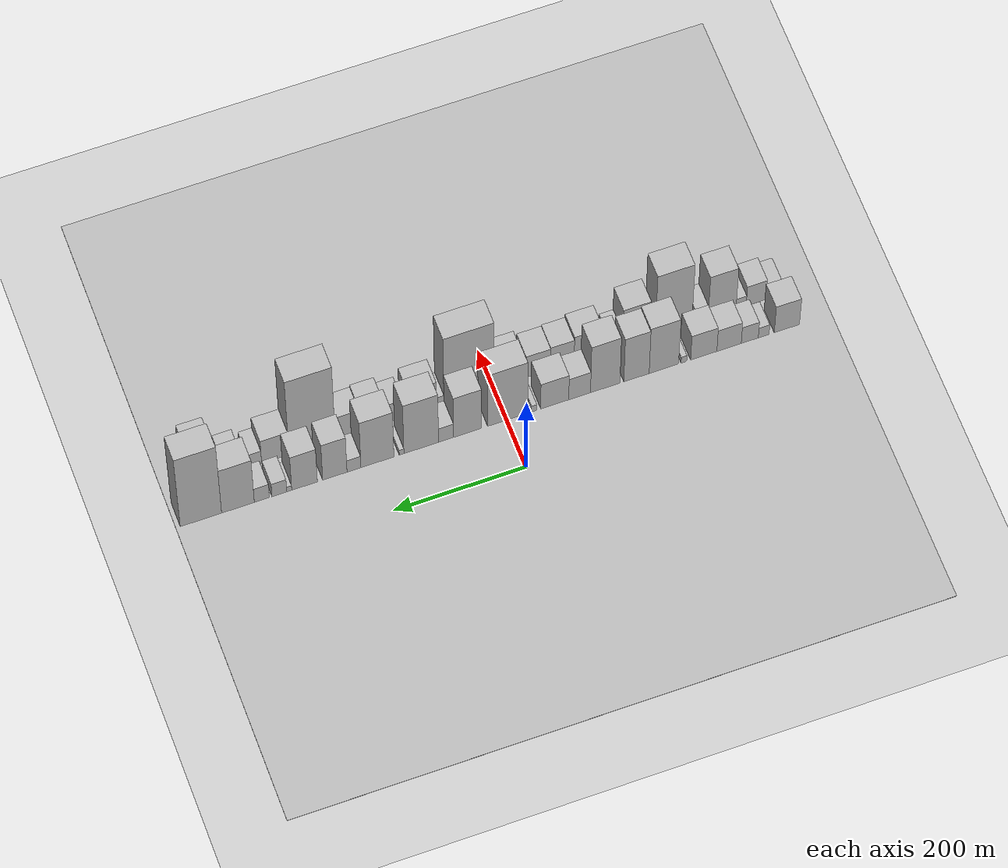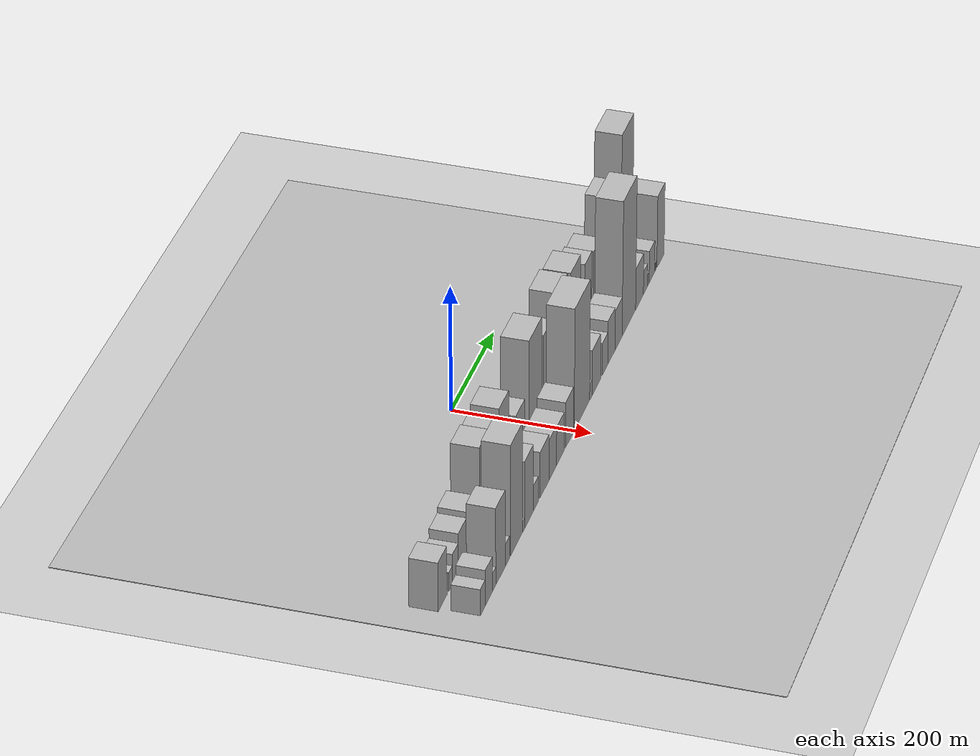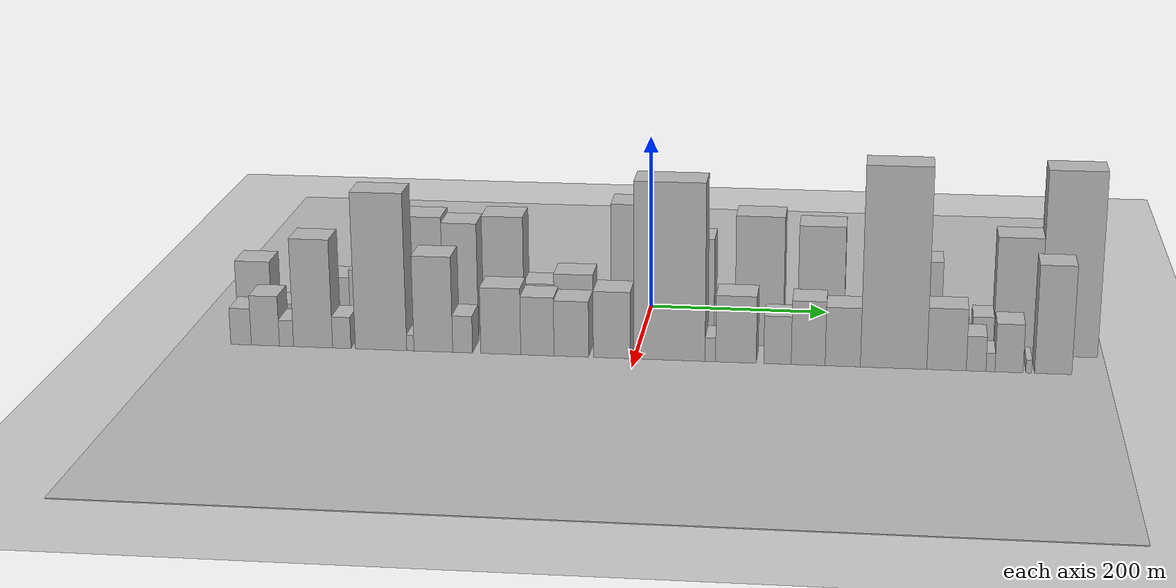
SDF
<sdf version="1.6">
 <world name="default">
  <include><name>ground_plane_1</name><uri>model://HANNAS_ground_plane</uri></include>
  <include>
   <name>ground_plane_2</name>
   <uri>model://HANNAS_ground_plane</uri>
   <pose>100 0 0  0 0 0</pose>
  </include>
  <model name="building_1">
   <static>1</static>
   <pose>100.0000 -430.4904 0 0.000000 0.000000 0.000000</pose>
   <link name="link">
    <pose>0 0 39.00 0 0 0</pose>
    <collision name="collision"><geometry><box><size>40.0000 39.0193 78.0000</size></box></geometry></collision>
    <visual name="visual">
     <cast_shadows>0</cast_shadows>
     <geometry><box><size>40.0000 39.0193 78.0000</size></box></geometry>
     <material>
      <script>
       <uri>model://HANNAS_wall/materials/scripts</uri>
       <uri>model://HANNAS_wall/materials/textures</uri>
       <name>vrc/HANNAS_wall</name>
      </script>
     </material>
    </visual>
   </link>
  </model>
  <model name="building_2">
   <static>1</static>
   <pose>100.0000 -394.6448 0 0.000000 0.000000 0.000000</pose>
   <link name="link">
    <pose>0 0 15.00 0 0 0</pose>
    <collision name="collision"><geometry><box><size>40.0000 16.6718 30.0000</size></box></geometry></collision>
    <visual name="visual">
     <cast_shadows>0</cast_shadows>
     <geometry><box><size>40.0000 16.6718 30.0000</size></box></geometry>
     <material>
      <script>
       <uri>model://HANNAS_wall/materials/scripts</uri>
       <uri>model://HANNAS_wall/materials/textures</uri>
       <name>vrc/HANNAS_wall</name>
      </script>
     </material>
    </visual>
   </link>
  </model>
  <model name="building_3">
   <static>1</static>
   <pose>100.0000 -373.1504 0 0.000000 0.000000 0.000000</pose>
   <link name="link">
    <pose>0 0 24.00 0 0 0</pose>
    <collision name="collision"><geometry><box><size>40.0000 26.3172 48.0000</size></box></geometry></collision>
    <visual name="visual">
     <cast_shadows>0</cast_shadows>
     <geometry><box><size>40.0000 26.3172 48.0000</size></box></geometry>
     <material>
      <script>
       <uri>model://HANNAS_wall/materials/scripts</uri>
       <uri>model://HANNAS_wall/materials/textures</uri>
       <name>vrc/HANNAS_wall</name>
      </script>
     </material>
    </visual>
   </link>
  </model>
  <model name="building_4">
   <static>1</static>
   <pose>100.0000 -341.1325 0 0.000000 0.000000 0.000000</pose>
   <link name="link">
    <pose>0 0 31.50 0 0 0</pose>
    <collision name="collision"><geometry><box><size>40.0000 37.7185 63.0000</size></box></geometry></collision>
    <visual name="visual">
     <cast_shadows>0</cast_shadows>
     <geometry><box><size>40.0000 37.7185 63.0000</size></box></geometry>
     <material>
      <script>
       <uri>model://HANNAS_wall/materials/scripts</uri>
       <uri>model://HANNAS_wall/materials/textures</uri>
       <name>vrc/HANNAS_wall</name>
      </script>
     </material>
    </visual>
   </link>
  </model>
  <model name="building_5">
   <static>1</static>
   <pose>100.0000 -302.0661 0 0.000000 0.000000 0.000000</pose>
   <link name="link">
    <pose>0 0 36.00 0 0 0</pose>
    <collision name="collision"><geometry><box><size>40.0000 40.4142 72.0000</size></box></geometry></collision>
    <visual name="visual">
     <cast_shadows>0</cast_shadows>
     <geometry><box><size>40.0000 40.4142 72.0000</size></box></geometry>
     <material>
      <script>
       <uri>model://HANNAS_wall/materials/scripts</uri>
       <uri>model://HANNAS_wall/materials/textures</uri>
       <name>vrc/HANNAS_wall</name>
      </script>
     </material>
    </visual>
   </link>
  </model>
  <model name="building_6">
   <static>1</static>
   <pose>100.0000 -271.5592 0 0.000000 0.000000 0.000000</pose>
   <link name="link">
    <pose>0 0 9.00 0 0 0</pose>
    <collision name="collision"><geometry><box><size>40.0000 8.5996 18.0000</size></box></geometry></collision>
    <visual name="visual">
     <cast_shadows>0</cast_shadows>
     <geometry><box><size>40.0000 8.5996 18.0000</size></box></geometry>
     <material>
      <script>
       <uri>model://HANNAS_wall/materials/scripts</uri>
       <uri>model://HANNAS_wall/materials/textures</uri>
       <name>vrc/HANNAS_wall</name>
      </script>
     </material>
    </visual>
   </link>
  </model>
  <model name="building_7">
   <static>1</static>
   <pose>100.0000 -240.6207 0 0.000000 0.000000 0.000000</pose>
   <link name="link">
    <pose>0 0 67.50 0 0 0</pose>
    <collision name="collision"><geometry><box><size>40.0000 45.2774 135.0000</size></box></geometry></collision>
    <visual name="visual">
     <cast_shadows>0</cast_shadows>
     <geometry><box><size>40.0000 45.2774 135.0000</size></box></geometry>
     <material>
      <script>
       <uri>model://HANNAS_wall/materials/scripts</uri>
       <uri>model://HANNAS_wall/materials/textures</uri>
       <name>vrc/HANNAS_wall</name>
      </script>
     </material>
    </visual>
   </link>
  </model>
  <model name="building_8">
   <static>1</static>
   <pose>100.0000 -198.5505 0 0.000000 0.000000 0.000000</pose>
   <link name="link">
    <pose>0 0 64.50 0 0 0</pose>
    <collision name="collision"><geometry><box><size>40.0000 38.8631 129.0000</size></box></geometry></collision>
    <visual name="visual">
     <cast_shadows>0</cast_shadows>
     <geometry><box><size>40.0000 38.8631 129.0000</size></box></geometry>
     <material>
      <script>
       <uri>model://HANNAS_wall/materials/scripts</uri>
       <uri>model://HANNAS_wall/materials/textures</uri>
       <name>vrc/HANNAS_wall</name>
      </script>
     </material>
    </visual>
   </link>
  </model>
  <model name="building_9">
   <static>1</static>
   <pose>100.0000 -150.5896 0 0.000000 0.000000 0.000000</pose>
   <link name="link">
    <pose>0 0 69.00 0 0 0</pose>
    <collision name="collision"><geometry><box><size>40.0000 45.0587 138.0000</size></box></geometry></collision>
    <visual name="visual">
     <cast_shadows>0</cast_shadows>
     <geometry><box><size>40.0000 45.0587 138.0000</size></box></geometry>
     <material>
      <script>
       <uri>model://HANNAS_wall/materials/scripts</uri>
       <uri>model://HANNAS_wall/materials/textures</uri>
       <name>vrc/HANNAS_wall</name>
      </script>
     </material>
    </visual>
   </link>
  </model>
  <model name="building_10">
   <static>1</static>
   <pose>100.0000 -111.4120 0 0.000000 0.000000 0.000000</pose>
   <link name="link">
    <pose>0 0 31.50 0 0 0</pose>
    <collision name="collision"><geometry><box><size>40.0000 33.2965 63.0000</size></box></geometry></collision>
    <visual name="visual">
     <cast_shadows>0</cast_shadows>
     <geometry><box><size>40.0000 33.2965 63.0000</size></box></geometry>
     <material>
      <script>
       <uri>model://HANNAS_wall/materials/scripts</uri>
       <uri>model://HANNAS_wall/materials/textures</uri>
       <name>vrc/HANNAS_wall</name>
      </script>
     </material>
    </visual>
   </link>
  </model>
  <model name="building_11">
   <static>1</static>
   <pose>100.0000 -73.3298 0 0.000000 0.000000 0.000000</pose>
   <link name="link">
    <pose>0 0 37.50 0 0 0</pose>
    <collision name="collision"><geometry><box><size>40.0000 42.8678 75.0000</size></box></geometry></collision>
    <visual name="visual">
     <cast_shadows>0</cast_shadows>
     <geometry><box><size>40.0000 42.8678 75.0000</size></box></geometry>
     <material>
      <script>
       <uri>model://HANNAS_wall/materials/scripts</uri>
       <uri>model://HANNAS_wall/materials/textures</uri>
       <name>vrc/HANNAS_wall</name>
      </script>
     </material>
    </visual>
   </link>
  </model>
  <model name="building_12">
   <static>1</static>
   <pose>100.0000 -41.9092 0 0.000000 0.000000 0.000000</pose>
   <link name="link">
    <pose>0 0 9.00 0 0 0</pose>
    <collision name="collision"><geometry><box><size>40.0000 7.9735 18.0000</size></box></geometry></collision>
    <visual name="visual">
     <cast_shadows>0</cast_shadows>
     <geometry><box><size>40.0000 7.9735 18.0000</size></box></geometry>
     <material>
      <script>
       <uri>model://HANNAS_wall/materials/scripts</uri>
       <uri>model://HANNAS_wall/materials/textures</uri>
       <name>vrc/HANNAS_wall</name>
      </script>
     </material>
    </visual>
   </link>
  </model>
  <model name="building_13">
   <static>1</static>
   <pose>100.0000 -1.4024 0 0.000000 0.000000 0.000000</pose>
   <link name="link">
    <pose>0 0 78.00 0 0 0</pose>
    <collision name="collision"><geometry><box><size>40.0000 61.0400 156.0000</size></box></geometry></collision>
    <visual name="visual">
     <cast_shadows>0</cast_shadows>
     <geometry><box><size>40.0000 61.0400 156.0000</size></box></geometry>
     <material>
      <script>
       <uri>model://HANNAS_wall/materials/scripts</uri>
       <uri>model://HANNAS_wall/materials/textures</uri>
       <name>vrc/HANNAS_wall</name>
      </script>
     </material>
    </visual>
   </link>
  </model>
  <model name="building_14">
   <static>1</static>
   <pose>100.0000 59.4734 0 0.000000 0.000000 0.000000</pose>
   <link name="link">
    <pose>0 0 60.00 0 0 0</pose>
    <collision name="collision"><geometry><box><size>40.0000 42.7116 120.0000</size></box></geometry></collision>
    <visual name="visual">
     <cast_shadows>0</cast_shadows>
     <geometry><box><size>40.0000 42.7116 120.0000</size></box></geometry>
     <material>
      <script>
       <uri>model://HANNAS_wall/materials/scripts</uri>
       <uri>model://HANNAS_wall/materials/textures</uri>
       <name>vrc/HANNAS_wall</name>
      </script>
     </material>
    </visual>
   </link>
  </model>
  <model name="building_15">
   <static>1</static>
   <pose>100.0000 92.2608 0 0.000000 0.000000 0.000000</pose>
   <link name="link">
    <pose>0 0 21.00 0 0 0</pose>
    <collision name="collision"><geometry><box><size>40.0000 22.8633 42.0000</size></box></geometry></collision>
    <visual name="visual">
     <cast_shadows>0</cast_shadows>
     <geometry><box><size>40.0000 22.8633 42.0000</size></box></geometry>
     <material>
      <script>
       <uri>model://HANNAS_wall/materials/scripts</uri>
       <uri>model://HANNAS_wall/materials/textures</uri>
       <name>vrc/HANNAS_wall</name>
      </script>
     </material>
    </visual>
   </link>
  </model>
  <model name="building_16">
   <static>1</static>
   <pose>100.0000 129.9867 0 0.000000 0.000000 0.000000</pose>
   <link name="link">
    <pose>0 0 73.50 0 0 0</pose>
    <collision name="collision"><geometry><box><size>40.0000 52.5884 147.0000</size></box></geometry></collision>
    <visual name="visual">
     <cast_shadows>0</cast_shadows>
     <geometry><box><size>40.0000 52.5884 147.0000</size></box></geometry>
     <material>
      <script>
       <uri>model://HANNAS_wall/materials/scripts</uri>
       <uri>model://HANNAS_wall/materials/textures</uri>
       <name>vrc/HANNAS_wall</name>
      </script>
     </material>
    </visual>
   </link>
  </model>
  <model name="building_17">
   <static>1</static>
   <pose>100.0000 159.8774 0 0.000000 0.000000 0.000000</pose>
   <link name="link">
    <pose>0 0 7.50 0 0 0</pose>
    <collision name="collision"><geometry><box><size>40.0000 7.1929 15.0000</size></box></geometry></collision>
    <visual name="visual">
     <cast_shadows>0</cast_shadows>
     <geometry><box><size>40.0000 7.1929 15.0000</size></box></geometry>
     <material>
      <script>
       <uri>model://HANNAS_wall/materials/scripts</uri>
       <uri>model://HANNAS_wall/materials/textures</uri>
       <name>vrc/HANNAS_wall</name>
      </script>
     </material>
    </visual>
   </link>
  </model>
  <model name="building_18">
   <static>1</static>
   <pose>100.0000 196.4500 0 0.000000 0.000000 0.000000</pose>
   <link name="link">
    <pose>0 0 69.00 0 0 0</pose>
    <collision name="collision"><geometry><box><size>40.0000 49.9524 138.0000</size></box></geometry></collision>
    <visual name="visual">
     <cast_shadows>0</cast_shadows>
     <geometry><box><size>40.0000 49.9524 138.0000</size></box></geometry>
     <material>
      <script>
       <uri>model://HANNAS_wall/materials/scripts</uri>
       <uri>model://HANNAS_wall/materials/textures</uri>
       <name>vrc/HANNAS_wall</name>
      </script>
     </material>
    </visual>
   </link>
  </model>
  <model name="building_19">
   <static>1</static>
   <pose>100.0000 231.9351 0 0.000000 0.000000 0.000000</pose>
   <link name="link">
    <pose>0 0 18.00 0 0 0</pose>
    <collision name="collision"><geometry><box><size>40.0000 21.0177 36.0000</size></box></geometry></collision>
    <visual name="visual">
     <cast_shadows>0</cast_shadows>
     <geometry><box><size>40.0000 21.0177 36.0000</size></box></geometry>
     <material>
      <script>
       <uri>model://HANNAS_wall/materials/scripts</uri>
       <uri>model://HANNAS_wall/materials/textures</uri>
       <name>vrc/HANNAS_wall</name>
      </script>
     </material>
    </visual>
   </link>
  </model>
  <model name="building_20">
   <static>1</static>
   <pose>100.0000 260.8106 0 0.000000 0.000000 0.000000</pose>
   <link name="link">
    <pose>0 0 54.00 0 0 0</pose>
    <collision name="collision"><geometry><box><size>40.0000 36.7334 108.0000</size></box></geometry></collision>
    <visual name="visual">
     <cast_shadows>0</cast_shadows>
     <geometry><box><size>40.0000 36.7334 108.0000</size></box></geometry>
     <material>
      <script>
       <uri>model://HANNAS_wall/materials/scripts</uri>
       <uri>model://HANNAS_wall/materials/textures</uri>
       <name>vrc/HANNAS_wall</name>
      </script>
     </material>
    </visual>
   </link>
  </model>
  <model name="building_21">
   <static>1</static>
   <pose>100.0000 306.5090 0 0.000000 0.000000 0.000000</pose>
   <link name="link">
    <pose>0 0 51.00 0 0 0</pose>
    <collision name="collision"><geometry><box><size>40.0000 38.6634 102.0000</size></box></geometry></collision>
    <visual name="visual">
     <cast_shadows>0</cast_shadows>
     <geometry><box><size>40.0000 38.6634 102.0000</size></box></geometry>
     <material>
      <script>
       <uri>model://HANNAS_wall/materials/scripts</uri>
       <uri>model://HANNAS_wall/materials/textures</uri>
       <name>vrc/HANNAS_wall</name>
      </script>
     </material>
    </visual>
   </link>
  </model>
  <model name="building_22">
   <static>1</static>
   <pose>100.0000 329.5579 0 0.000000 0.000000 0.000000</pose>
   <link name="link">
    <pose>0 0 7.50 0 0 0</pose>
    <collision name="collision"><geometry><box><size>40.0000 7.4344 15.0000</size></box></geometry></collision>
    <visual name="visual">
     <cast_shadows>0</cast_shadows>
     <geometry><box><size>40.0000 7.4344 15.0000</size></box></geometry>
     <material>
      <script>
       <uri>model://HANNAS_wall/materials/scripts</uri>
       <uri>model://HANNAS_wall/materials/textures</uri>
       <name>vrc/HANNAS_wall</name>
      </script>
     </material>
    </visual>
   </link>
  </model>
  <model name="building_23">
   <static>1</static>
   <pose>100.0000 344.4631 0 0.000000 0.000000 0.000000</pose>
   <link name="link">
    <pose>0 0 19.50 0 0 0</pose>
    <collision name="collision"><geometry><box><size>40.0000 22.3760 39.0000</size></box></geometry></collision>
    <visual name="visual">
     <cast_shadows>0</cast_shadows>
     <geometry><box><size>40.0000 22.3760 39.0000</size></box></geometry>
     <material>
      <script>
       <uri>model://HANNAS_wall/materials/scripts</uri>
       <uri>model://HANNAS_wall/materials/textures</uri>
       <name>vrc/HANNAS_wall</name>
      </script>
     </material>
    </visual>
   </link>
  </model>
  <model name="building_24">
   <static>1</static>
   <pose>100.0000 370.8911 0 0.000000 0.000000 0.000000</pose>
   <link name="link">
    <pose>0 0 21.00 0 0 0</pose>
    <collision name="collision"><geometry><box><size>40.0000 22.4800 42.0000</size></box></geometry></collision>
    <visual name="visual">
     <cast_shadows>0</cast_shadows>
     <geometry><box><size>40.0000 22.4800 42.0000</size></box></geometry>
     <material>
      <script>
       <uri>model://HANNAS_wall/materials/scripts</uri>
       <uri>model://HANNAS_wall/materials/textures</uri>
       <name>vrc/HANNAS_wall</name>
      </script>
     </material>
    </visual>
   </link>
  </model>
  <model name="building_25">
   <static>1</static>
   <pose>100.0000 406.7047 0 0.000000 0.000000 0.000000</pose>
   <link name="link">
    <pose>0 0 66.00 0 0 0</pose>
    <collision name="collision"><geometry><box><size>40.0000 49.1472 132.0000</size></box></geometry></collision>
    <visual name="visual">
     <cast_shadows>0</cast_shadows>
     <geometry><box><size>40.0000 49.1472 132.0000</size></box></geometry>
     <material>
      <script>
       <uri>model://HANNAS_wall/materials/scripts</uri>
       <uri>model://HANNAS_wall/materials/textures</uri>
       <name>vrc/HANNAS_wall</name>
      </script>
     </material>
    </visual>
   </link>
  </model>
  <model name="building_26">
   <static>1</static>
   <pose>100.0000 462.3320 0 0.000000 0.000000 0.000000</pose>
   <link name="link">
    <pose>0 0 103.50 0 0 0</pose>
    <collision name="collision"><geometry><box><size>40.0000 62.1074 207.0000</size></box></geometry></collision>
    <visual name="visual">
     <cast_shadows>0</cast_shadows>
     <geometry><box><size>40.0000 62.1074 207.0000</size></box></geometry>
     <material>
      <script>
       <uri>model://HANNAS_wall/materials/scripts</uri>
       <uri>model://HANNAS_wall/materials/textures</uri>
       <name>vrc/HANNAS_wall</name>
      </script>
     </material>
    </visual>
   </link>
  </model>
  <model name="building_27">
   <static>1</static>
   <pose>155.0000 -431.5969 0 0.000000 0.000000 0.000000</pose>
   <link name="link">
    <pose>0 0 21.00 0 0 0</pose>
    <collision name="collision"><geometry><box><size>40.0000 22.8062 42.0000</size></box></geometry></collision>
    <visual name="visual">
     <cast_shadows>0</cast_shadows>
     <geometry><box><size>40.0000 22.8062 42.0000</size></box></geometry>
     <material>
      <script>
       <uri>model://HANNAS_wall/materials/scripts</uri>
       <uri>model://HANNAS_wall/materials/textures</uri>
       <name>vrc/HANNAS_wall</name>
      </script>
     </material>
    </visual>
   </link>
  </model>
  <model name="building_28">
   <static>1</static>
   <pose>155.0000 -404.5654 0 0.000000 0.000000 0.000000</pose>
   <link name="link">
    <pose>0 0 28.50 0 0 0</pose>
    <collision name="collision"><geometry><box><size>40.0000 31.2567 57.0000</size></box></geometry></collision>
    <visual name="visual">
     <cast_shadows>0</cast_shadows>
     <geometry><box><size>40.0000 31.2567 57.0000</size></box></geometry>
     <material>
      <script>
       <uri>model://HANNAS_wall/materials/scripts</uri>
       <uri>model://HANNAS_wall/materials/textures</uri>
       <name>vrc/HANNAS_wall</name>
      </script>
     </material>
    </visual>
   </link>
  </model>
  <model name="building_29">
   <static>1</static>
   <pose>155.0000 -381.0505 0 0.000000 0.000000 0.000000</pose>
   <link name="link">
    <pose>0 0 15.00 0 0 0</pose>
    <collision name="collision"><geometry><box><size>40.0000 15.7732 30.0000</size></box></geometry></collision>
    <visual name="visual">
     <cast_shadows>0</cast_shadows>
     <geometry><box><size>40.0000 15.7732 30.0000</size></box></geometry>
     <material>
      <script>
       <uri>model://HANNAS_wall/materials/scripts</uri>
       <uri>model://HANNAS_wall/materials/textures</uri>
       <name>vrc/HANNAS_wall</name>
      </script>
     </material>
    </visual>
   </link>
  </model>
  <model name="building_30">
   <static>1</static>
   <pose>155.0000 -351.5310 0 0.000000 0.000000 0.000000</pose>
   <link name="link">
    <pose>0 0 61.50 0 0 0</pose>
    <collision name="collision"><geometry><box><size>40.0000 43.2659 123.0000</size></box></geometry></collision>
    <visual name="visual">
     <cast_shadows>0</cast_shadows>
     <geometry><box><size>40.0000 43.2659 123.0000</size></box></geometry>
     <material>
      <script>
       <uri>model://HANNAS_wall/materials/scripts</uri>
       <uri>model://HANNAS_wall/materials/textures</uri>
       <name>vrc/HANNAS_wall</name>
      </script>
     </material>
    </visual>
   </link>
  </model>
  <model name="building_31">
   <static>1</static>
   <pose>155.0000 -319.8091 0 0.000000 0.000000 0.000000</pose>
   <link name="link">
    <pose>0 0 18.00 0 0 0</pose>
    <collision name="collision"><geometry><box><size>40.0000 20.1777 36.0000</size></box></geometry></collision>
    <visual name="visual">
     <cast_shadows>0</cast_shadows>
     <geometry><box><size>40.0000 20.1777 36.0000</size></box></geometry>
     <material>
      <script>
       <uri>model://HANNAS_wall/materials/scripts</uri>
       <uri>model://HANNAS_wall/materials/textures</uri>
       <name>vrc/HANNAS_wall</name>
      </script>
     </material>
    </visual>
   </link>
  </model>
  <model name="building_32">
   <static>1</static>
   <pose>155.0000 -276.4470 0 0.000000 0.000000 0.000000</pose>
   <link name="link">
    <pose>0 0 88.50 0 0 0</pose>
    <collision name="collision"><geometry><box><size>40.0000 56.5466 177.0000</size></box></geometry></collision>
    <visual name="visual">
     <cast_shadows>0</cast_shadows>
     <geometry><box><size>40.0000 56.5466 177.0000</size></box></geometry>
     <material>
      <script>
       <uri>model://HANNAS_wall/materials/scripts</uri>
       <uri>model://HANNAS_wall/materials/textures</uri>
       <name>vrc/HANNAS_wall</name>
      </script>
     </material>
    </visual>
   </link>
  </model>
  <model name="building_33">
   <static>1</static>
   <pose>155.0000 -244.1993 0 0.000000 0.000000 0.000000</pose>
   <link name="link">
    <pose>0 0 9.00 0 0 0</pose>
    <collision name="collision"><geometry><box><size>40.0000 7.9488 18.0000</size></box></geometry></collision>
    <visual name="visual">
     <cast_shadows>0</cast_shadows>
     <geometry><box><size>40.0000 7.9488 18.0000</size></box></geometry>
     <material>
      <script>
       <uri>model://HANNAS_wall/materials/scripts</uri>
       <uri>model://HANNAS_wall/materials/textures</uri>
       <name>vrc/HANNAS_wall</name>
      </script>
     </material>
    </visual>
   </link>
  </model>
  <model name="building_34">
   <static>1</static>
   <pose>155.0000 -219.0014 0 0.000000 0.000000 0.000000</pose>
   <link name="link">
    <pose>0 0 54.00 0 0 0</pose>
    <collision name="collision"><geometry><box><size>40.0000 42.4469 108.0000</size></box></geometry></collision>
    <visual name="visual">
     <cast_shadows>0</cast_shadows>
     <geometry><box><size>40.0000 42.4469 108.0000</size></box></geometry>
     <material>
      <script>
       <uri>model://HANNAS_wall/materials/scripts</uri>
       <uri>model://HANNAS_wall/materials/textures</uri>
       <name>vrc/HANNAS_wall</name>
      </script>
     </material>
    </visual>
   </link>
  </model>
  <model name="building_35">
   <static>1</static>
   <pose>155.0000 -186.9255 0 0.000000 0.000000 0.000000</pose>
   <link name="link">
    <pose>0 0 21.00 0 0 0</pose>
    <collision name="collision"><geometry><box><size>40.0000 21.7050 42.0000</size></box></geometry></collision>
    <visual name="visual">
     <cast_shadows>0</cast_shadows>
     <geometry><box><size>40.0000 21.7050 42.0000</size></box></geometry>
     <material>
      <script>
       <uri>model://HANNAS_wall/materials/scripts</uri>
       <uri>model://HANNAS_wall/materials/textures</uri>
       <name>vrc/HANNAS_wall</name>
      </script>
     </material>
    </visual>
   </link>
  </model>
  <model name="building_36">
   <static>1</static>
   <pose>155.0000 -145.3016 0 0.000000 0.000000 0.000000</pose>
   <link name="link">
    <pose>0 0 37.50 0 0 0</pose>
    <collision name="collision"><geometry><box><size>40.0000 43.5428 75.0000</size></box></geometry></collision>
    <visual name="visual">
     <cast_shadows>0</cast_shadows>
     <geometry><box><size>40.0000 43.5428 75.0000</size></box></geometry>
     <material>
      <script>
       <uri>model://HANNAS_wall/materials/scripts</uri>
       <uri>model://HANNAS_wall/materials/textures</uri>
       <name>vrc/HANNAS_wall</name>
      </script>
     </material>
    </visual>
   </link>
  </model>
  <model name="building_37">
   <static>1</static>
   <pose>155.0000 -105.4698 0 0.000000 0.000000 0.000000</pose>
   <link name="link">
    <pose>0 0 33.00 0 0 0</pose>
    <collision name="collision"><geometry><box><size>40.0000 36.1207 66.0000</size></box></geometry></collision>
    <visual name="visual">
     <cast_shadows>0</cast_shadows>
     <geometry><box><size>40.0000 36.1207 66.0000</size></box></geometry>
     <material>
      <script>
       <uri>model://HANNAS_wall/materials/scripts</uri>
       <uri>model://HANNAS_wall/materials/textures</uri>
       <name>vrc/HANNAS_wall</name>
      </script>
     </material>
    </visual>
   </link>
  </model>
  <model name="building_38">
   <static>1</static>
   <pose>155.0000 -68.6264 0 0.000000 0.000000 0.000000</pose>
   <link name="link">
    <pose>0 0 31.50 0 0 0</pose>
    <collision name="collision"><geometry><box><size>40.0000 37.5661 63.0000</size></box></geometry></collision>
    <visual name="visual">
     <cast_shadows>0</cast_shadows>
     <geometry><box><size>40.0000 37.5661 63.0000</size></box></geometry>
     <material>
      <script>
       <uri>model://HANNAS_wall/materials/scripts</uri>
       <uri>model://HANNAS_wall/materials/textures</uri>
       <name>vrc/HANNAS_wall</name>
      </script>
     </material>
    </visual>
   </link>
  </model>
  <model name="building_39">
   <static>1</static>
   <pose>155.0000 -24.9287 0 0.000000 0.000000 0.000000</pose>
   <link name="link">
    <pose>0 0 37.50 0 0 0</pose>
    <collision name="collision"><geometry><box><size>40.0000 39.8293 75.0000</size></box></geometry></collision>
    <visual name="visual">
     <cast_shadows>0</cast_shadows>
     <geometry><box><size>40.0000 39.8293 75.0000</size></box></geometry>
     <material>
      <script>
       <uri>model://HANNAS_wall/materials/scripts</uri>
       <uri>model://HANNAS_wall/materials/textures</uri>
       <name>vrc/HANNAS_wall</name>
      </script>
     </material>
    </visual>
   </link>
  </model>
  <model name="building_40">
   <static>1</static>
   <pose>155.0000 37.2204 0 0.000000 0.000000 0.000000</pose>
   <link name="link">
    <pose>0 0 99.00 0 0 0</pose>
    <collision name="collision"><geometry><box><size>40.0000 76.4689 198.0000</size></box></geometry></collision>
    <visual name="visual">
     <cast_shadows>0</cast_shadows>
     <geometry><box><size>40.0000 76.4689 198.0000</size></box></geometry>
     <material>
      <script>
       <uri>model://HANNAS_wall/materials/scripts</uri>
       <uri>model://HANNAS_wall/materials/textures</uri>
       <name>vrc/HANNAS_wall</name>
      </script>
     </material>
    </visual>
   </link>
  </model>
  <model name="building_41">
   <static>1</static>
   <pose>155.0000 81.0691 0 0.000000 0.000000 0.000000</pose>
   <link name="link">
    <pose>0 0 13.50 0 0 0</pose>
    <collision name="collision"><geometry><box><size>40.0000 11.2285 27.0000</size></box></geometry></collision>
    <visual name="visual">
     <cast_shadows>0</cast_shadows>
     <geometry><box><size>40.0000 11.2285 27.0000</size></box></geometry>
     <material>
      <script>
       <uri>model://HANNAS_wall/materials/scripts</uri>
       <uri>model://HANNAS_wall/materials/textures</uri>
       <name>vrc/HANNAS_wall</name>
      </script>
     </material>
    </visual>
   </link>
  </model>
  <model name="building_42">
   <static>1</static>
   <pose>155.0000 108.4077 0 0.000000 0.000000 0.000000</pose>
   <link name="link">
    <pose>0 0 37.50 0 0 0</pose>
    <collision name="collision"><geometry><box><size>40.0000 43.4487 75.0000</size></box></geometry></collision>
    <visual name="visual">
     <cast_shadows>0</cast_shadows>
     <geometry><box><size>40.0000 43.4487 75.0000</size></box></geometry>
     <material>
      <script>
       <uri>model://HANNAS_wall/materials/scripts</uri>
       <uri>model://HANNAS_wall/materials/textures</uri>
       <name>vrc/HANNAS_wall</name>
      </script>
     </material>
    </visual>
   </link>
  </model>
  <model name="building_43">
   <static>1</static>
   <pose>155.0000 152.7287 0 0.000000 0.000000 0.000000</pose>
   <link name="link">
    <pose>0 0 27.00 0 0 0</pose>
    <collision name="collision"><geometry><box><size>40.0000 29.1933 54.0000</size></box></geometry></collision>
    <visual name="visual">
     <cast_shadows>0</cast_shadows>
     <geometry><box><size>40.0000 29.1933 54.0000</size></box></geometry>
     <material>
      <script>
       <uri>model://HANNAS_wall/materials/scripts</uri>
       <uri>model://HANNAS_wall/materials/textures</uri>
       <name>vrc/HANNAS_wall</name>
      </script>
     </material>
    </visual>
   </link>
  </model>
  <model name="building_44">
   <static>1</static>
   <pose>155.0000 185.3663 0 0.000000 0.000000 0.000000</pose>
   <link name="link">
    <pose>0 0 36.00 0 0 0</pose>
    <collision name="collision"><geometry><box><size>40.0000 36.0818 72.0000</size></box></geometry></collision>
    <visual name="visual">
     <cast_shadows>0</cast_shadows>
     <geometry><box><size>40.0000 36.0818 72.0000</size></box></geometry>
     <material>
      <script>
       <uri>model://HANNAS_wall/materials/scripts</uri>
       <uri>model://HANNAS_wall/materials/textures</uri>
       <name>vrc/HANNAS_wall</name>
      </script>
     </material>
    </visual>
   </link>
  </model>
  <model name="building_45">
   <static>1</static>
   <pose>155.0000 222.0654 0 0.000000 0.000000 0.000000</pose>
   <link name="link">
    <pose>0 0 33.00 0 0 0</pose>
    <collision name="collision"><geometry><box><size>40.0000 37.3164 66.0000</size></box></geometry></collision>
    <visual name="visual">
     <cast_shadows>0</cast_shadows>
     <geometry><box><size>40.0000 37.3164 66.0000</size></box></geometry>
     <material>
      <script>
       <uri>model://HANNAS_wall/materials/scripts</uri>
       <uri>model://HANNAS_wall/materials/textures</uri>
       <name>vrc/HANNAS_wall</name>
      </script>
     </material>
    </visual>
   </link>
  </model>
  <model name="building_46">
   <static>1</static>
   <pose>155.0000 275.7441 0 0.000000 0.000000 0.000000</pose>
   <link name="link">
    <pose>0 0 111.00 0 0 0</pose>
    <collision name="collision"><geometry><box><size>40.0000 70.0410 222.0000</size></box></geometry></collision>
    <visual name="visual">
     <cast_shadows>0</cast_shadows>
     <geometry><box><size>40.0000 70.0410 222.0000</size></box></geometry>
     <material>
      <script>
       <uri>model://HANNAS_wall/materials/scripts</uri>
       <uri>model://HANNAS_wall/materials/textures</uri>
       <name>vrc/HANNAS_wall</name>
      </script>
     </material>
    </visual>
   </link>
  </model>
  <model name="building_47">
   <static>1</static>
   <pose>155.0000 331.4370 0 0.000000 0.000000 0.000000</pose>
   <link name="link">
    <pose>0 0 34.50 0 0 0</pose>
    <collision name="collision"><geometry><box><size>40.0000 41.3449 69.0000</size></box></geometry></collision>
    <visual name="visual">
     <cast_shadows>0</cast_shadows>
     <geometry><box><size>40.0000 41.3449 69.0000</size></box></geometry>
     <material>
      <script>
       <uri>model://HANNAS_wall/materials/scripts</uri>
       <uri>model://HANNAS_wall/materials/textures</uri>
       <name>vrc/HANNAS_wall</name>
      </script>
     </material>
    </visual>
   </link>
  </model>
  <model name="building_48">
   <static>1</static>
   <pose>155.0000 362.3904 0 0.000000 0.000000 0.000000</pose>
   <link name="link">
    <pose>0 0 19.50 0 0 0</pose>
    <collision name="collision"><geometry><box><size>40.0000 20.5618 39.0000</size></box></geometry></collision>
    <visual name="visual">
     <cast_shadows>0</cast_shadows>
     <geometry><box><size>40.0000 20.5618 39.0000</size></box></geometry>
     <material>
      <script>
       <uri>model://HANNAS_wall/materials/scripts</uri>
       <uri>model://HANNAS_wall/materials/textures</uri>
       <name>vrc/HANNAS_wall</name>
      </script>
     </material>
    </visual>
   </link>
  </model>
  <model name="building_49">
   <static>1</static>
   <pose>155.0000 377.4019 0 0.000000 0.000000 0.000000</pose>
   <link name="link">
    <pose>0 0 10.50 0 0 0</pose>
    <collision name="collision"><geometry><box><size>40.0000 9.4613 21.0000</size></box></geometry></collision>
    <visual name="visual">
     <cast_shadows>0</cast_shadows>
     <geometry><box><size>40.0000 9.4613 21.0000</size></box></geometry>
     <material>
      <script>
       <uri>model://HANNAS_wall/materials/scripts</uri>
       <uri>model://HANNAS_wall/materials/textures</uri>
       <name>vrc/HANNAS_wall</name>
      </script>
     </material>
    </visual>
   </link>
  </model>
  <model name="building_50">
   <static>1</static>
   <pose>155.0000 396.7908 0 0.000000 0.000000 0.000000</pose>
   <link name="link">
    <pose>0 0 27.00 0 0 0</pose>
    <collision name="collision"><geometry><box><size>40.0000 29.3164 54.0000</size></box></geometry></collision>
    <visual name="visual">
     <cast_shadows>0</cast_shadows>
     <geometry><box><size>40.0000 29.3164 54.0000</size></box></geometry>
     <material>
      <script>
       <uri>model://HANNAS_wall/materials/scripts</uri>
       <uri>model://HANNAS_wall/materials/textures</uri>
       <name>vrc/HANNAS_wall</name>
      </script>
     </material>
    </visual>
   </link>
  </model>
  <model name="building_51">
   <static>1</static>
   <pose>155.0000 417.4787 0 0.000000 0.000000 0.000000</pose>
   <link name="link">
    <pose>0 0 7.50 0 0 0</pose>
    <collision name="collision"><geometry><box><size>40.0000 6.0595 15.0000</size></box></geometry></collision>
    <visual name="visual">
     <cast_shadows>0</cast_shadows>
     <geometry><box><size>40.0000 6.0595 15.0000</size></box></geometry>
     <material>
      <script>
       <uri>model://HANNAS_wall/materials/scripts</uri>
       <uri>model://HANNAS_wall/materials/textures</uri>
       <name>vrc/HANNAS_wall</name>
      </script>
     </material>
    </visual>
   </link>
  </model>
  <model name="building_52">
   <static>1</static>
   <pose>155.0000 442.8946 0 0.000000 0.000000 0.000000</pose>
   <link name="link">
    <pose>0 0 60.00 0 0 0</pose>
    <collision name="collision"><geometry><box><size>40.0000 38.7723 120.0000</size></box></geometry></collision>
    <visual name="visual">
     <cast_shadows>0</cast_shadows>
     <geometry><box><size>40.0000 38.7723 120.0000</size></box></geometry>
     <material>
      <script>
       <uri>model://HANNAS_wall/materials/scripts</uri>
       <uri>model://HANNAS_wall/materials/textures</uri>
       <name>vrc/HANNAS_wall</name>
      </script>
     </material>
    </visual>
   </link>
  </model>
 </world>
</sdf>
